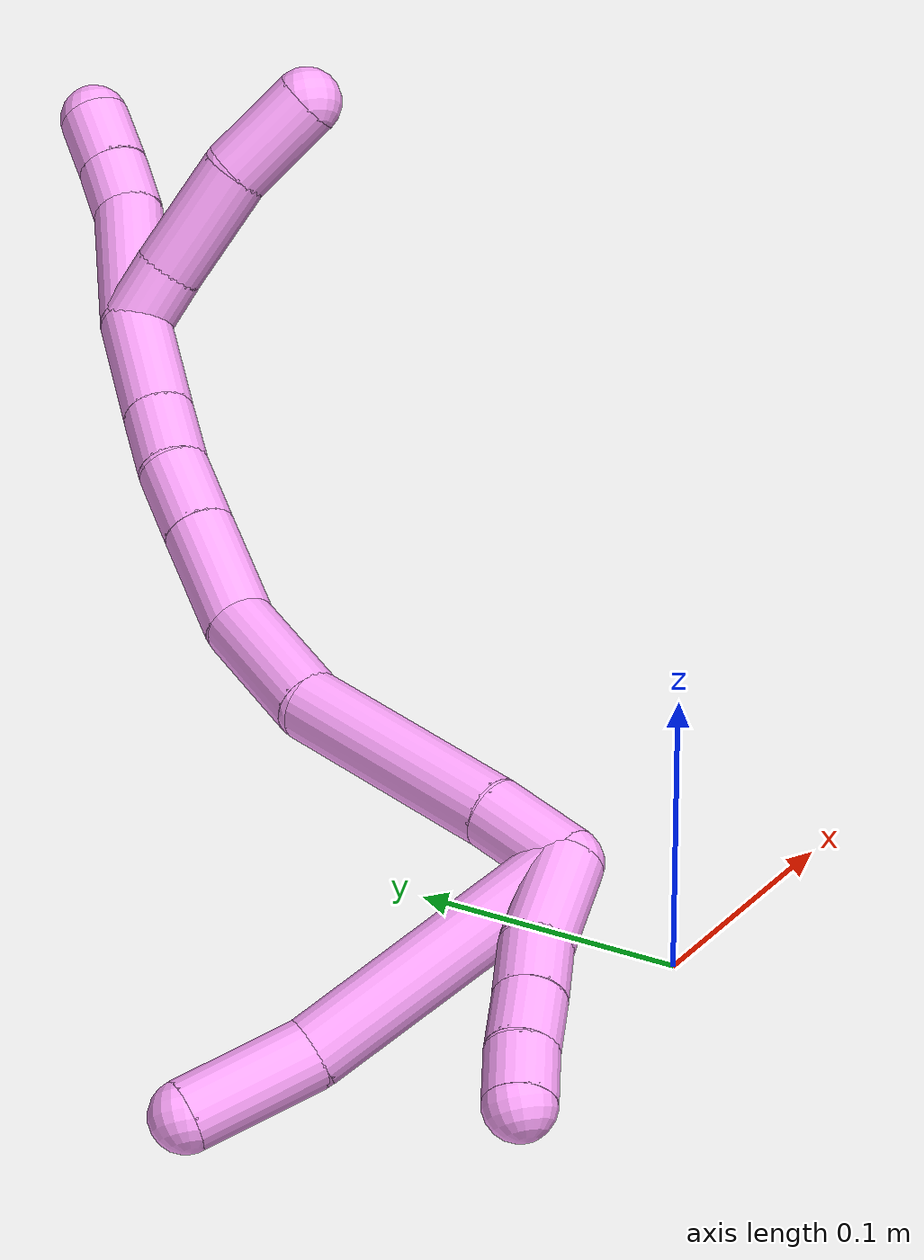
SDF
<sdf version="1.7">
 <world name="default">
  <model name="4">
   <static>0</static>
   <link name="4">
    <collision name="collision-cylinder-e_1_2_8">
     <pose>-0.025064 0.039115 -0.023148 -2.10516 -0.503951 0.848212</pose>
     <geometry><cylinder><radius>0.0125</radius><length>0.103808</length></cylinder></geometry>
     <surface>
      <friction><ode><mu>1.16</mu><mu2>1.16</mu2><slip1>0</slip1><slip2>0</slip2></ode></friction>
      <contact><ode><kp>1e+06</kp><kd>1</kd><max_vel>0</max_vel><min_depth>0.001</min_depth></ode></contact>
     </surface>
    </collision>
    <visual name="visual-cylinder-e_1_2_8">
     <pose>-0.025064 0.039115 -0.023148 -2.10516 -0.503951 0.848212</pose>
     <geometry><cylinder><radius>0.0125</radius><length>0.103808</length></cylinder></geometry>
     <material><ambient>1 0.65098 0.996078 1</ambient></material>
    </visual>
    <collision name="collision-cylinder-e_2_8_6">
     <pose>-0.065086 0.094283 -0.053506 -1.99293 -0.704517 1.03321</pose>
     <geometry><cylinder><radius>0.0125</radius><length>0.046192</length></cylinder></geometry>
     <surface>
      <friction><ode><mu>1.16</mu><mu2>1.16</mu2><slip1>0</slip1><slip2>0</slip2></ode></friction>
      <contact><ode><kp>1e+06</kp><kd>1</kd><max_vel>0</max_vel><min_depth>0.001</min_depth></ode></contact>
     </surface>
    </collision>
    <visual name="visual-cylinder-e_2_8_6">
     <pose>-0.065086 0.094283 -0.053506 -1.99293 -0.704517 1.03321</pose>
     <geometry><cylinder><radius>0.0125</radius><length>0.046192</length></cylinder></geometry>
     <material><ambient>1 0.65098 0.996078 1</ambient></material>
    </visual>
    <collision name="collision-cylinder-e_1_2_9">
     <pose>-0.010264 0.002342 -0.014507 -2.98155 -0.609718 2.64253</pose>
     <geometry><cylinder><radius>0.0125</radius><length>0.035849</length></cylinder></geometry>
     <surface>
      <friction><ode><mu>1.16</mu><mu2>1.16</mu2><slip1>0</slip1><slip2>0</slip2></ode></friction>
      <contact><ode><kp>1e+06</kp><kd>1</kd><max_vel>0</max_vel><min_depth>0.001</min_depth></ode></contact>
     </surface>
    </collision>
    <visual name="visual-cylinder-e_1_2_9">
     <pose>-0.010264 0.002342 -0.014507 -2.98155 -0.609718 2.64253</pose>
     <geometry><cylinder><radius>0.0125</radius><length>0.035849</length></cylinder></geometry>
     <material><ambient>1 0.65098 0.996078 1</ambient></material>
    </visual>
    <collision name="collision-cylinder-e_2_9_10">
     <pose>-0.026142 0.004082 -0.038555 3.07866 -0.530948 -2.91109</pose>
     <geometry><cylinder><radius>0.0125</radius><length>0.022172</length></cylinder></geometry>
     <surface>
      <friction><ode><mu>1.16</mu><mu2>1.16</mu2><slip1>0</slip1><slip2>0</slip2></ode></friction>
      <contact><ode><kp>1e+06</kp><kd>1</kd><max_vel>0</max_vel><min_depth>0.001</min_depth></ode></contact>
     </surface>
    </collision>
    <visual name="visual-cylinder-e_2_9_10">
     <pose>-0.026142 0.004082 -0.038555 3.07866 -0.530948 -2.91109</pose>
     <geometry><cylinder><radius>0.0125</radius><length>0.022172</length></cylinder></geometry>
     <material><ambient>1 0.65098 0.996078 1</ambient></material>
    </visual>
    <collision name="collision-cylinder-e_3_10_11">
     <pose>-0.037341 0.003226 -0.057348 3.11399 -0.542961 -3.0425</pose>
     <geometry><cylinder><radius>0.0125</radius><length>0.021623</length></cylinder></geometry>
     <surface>
      <friction><ode><mu>1.16</mu><mu2>1.16</mu2><slip1>0</slip1><slip2>0</slip2></ode></friction>
      <contact><ode><kp>1e+06</kp><kd>1</kd><max_vel>0</max_vel><min_depth>0.001</min_depth></ode></contact>
     </surface>
    </collision>
    <visual name="visual-cylinder-e_3_10_11">
     <pose>-0.037341 0.003226 -0.057348 3.11399 -0.542961 -3.0425</pose>
     <geometry><cylinder><radius>0.0125</radius><length>0.021623</length></cylinder></geometry>
     <material><ambient>1 0.65098 0.996078 1</ambient></material>
    </visual>
    <collision name="collision-cylinder-e_4_11_5">
     <pose>-0.047281 0.002399 -0.075784 3.07947 -0.442 -2.86675</pose>
     <geometry><cylinder><radius>0.0125</radius><length>0.020356</length></cylinder></geometry>
     <surface>
      <friction><ode><mu>1.16</mu><mu2>1.16</mu2><slip1>0</slip1><slip2>0</slip2></ode></friction>
      <contact><ode><kp>1e+06</kp><kd>1</kd><max_vel>0</max_vel><min_depth>0.001</min_depth></ode></contact>
     </surface>
    </collision>
    <visual name="visual-cylinder-e_4_11_5">
     <pose>-0.047281 0.002399 -0.075784 3.07947 -0.442 -2.86675</pose>
     <geometry><cylinder><radius>0.0125</radius><length>0.020356</length></cylinder></geometry>
     <material><ambient>1 0.65098 0.996078 1</ambient></material>
    </visual>
    <collision name="collision-cylinder-e_1_2_12">
     <pose>-0.001675 0.011181 0.011891 -0.754645 -0.102245 0.040551</pose>
     <geometry><cylinder><radius>0.0125</radius><length>0.032815</length></cylinder></geometry>
     <surface>
      <friction><ode><mu>1.16</mu><mu2>1.16</mu2><slip1>0</slip1><slip2>0</slip2></ode></friction>
      <contact><ode><kp>1e+06</kp><kd>1</kd><max_vel>0</max_vel><min_depth>0.001</min_depth></ode></contact>
     </surface>
    </collision>
    <visual name="visual-cylinder-e_1_2_12">
     <pose>-0.001675 0.011181 0.011891 -0.754645 -0.102245 0.040551</pose>
     <geometry><cylinder><radius>0.0125</radius><length>0.032815</length></cylinder></geometry>
     <material><ambient>1 0.65098 0.996078 1</ambient></material>
    </visual>
    <collision name="collision-cylinder-e_2_12_13">
     <pose>-0.005191 0.052971 0.052012 -0.825794 -0.044192 0.019362</pose>
     <geometry><cylinder><radius>0.0125</radius><length>0.083362</length></cylinder></geometry>
     <surface>
      <friction><ode><mu>1.16</mu><mu2>1.16</mu2><slip1>0</slip1><slip2>0</slip2></ode></friction>
      <contact><ode><kp>1e+06</kp><kd>1</kd><max_vel>0</max_vel><min_depth>0.001</min_depth></ode></contact>
     </surface>
    </collision>
    <visual name="visual-cylinder-e_2_12_13">
     <pose>-0.005191 0.052971 0.052012 -0.825794 -0.044192 0.019362</pose>
     <geometry><cylinder><radius>0.0125</radius><length>0.083362</length></cylinder></geometry>
     <material><ambient>1 0.65098 0.996078 1</ambient></material>
    </visual>
    <collision name="collision-cylinder-e_3_13_14">
     <pose>-0.003315 0.097358 0.099517 -0.620619 0.155612 -0.04999</pose>
     <geometry><cylinder><radius>0.0125</radius><length>0.047964</length></cylinder></geometry>
     <surface>
      <friction><ode><mu>1.16</mu><mu2>1.16</mu2><slip1>0</slip1><slip2>0</slip2></ode></friction>
      <contact><ode><kp>1e+06</kp><kd>1</kd><max_vel>0</max_vel><min_depth>0.001</min_depth></ode></contact>
     </surface>
    </collision>
    <visual name="visual-cylinder-e_3_13_14">
     <pose>-0.003315 0.097358 0.099517 -0.620619 0.155612 -0.04999</pose>
     <geometry><cylinder><radius>0.0125</radius><length>0.047964</length></cylinder></geometry>
     <material><ambient>1 0.65098 0.996078 1</ambient></material>
    </visual>
    <collision name="collision-cylinder-e_4_14_15">
     <pose>0.002165 0.117214 0.138184 -0.303715 0.086557 -0.013254</pose>
     <geometry><cylinder><radius>0.0125</radius><length>0.040799</length></cylinder></geometry>
     <surface>
      <friction><ode><mu>1.16</mu><mu2>1.16</mu2><slip1>0</slip1><slip2>0</slip2></ode></friction>
      <contact><ode><kp>1e+06</kp><kd>1</kd><max_vel>0</max_vel><min_depth>0.001</min_depth></ode></contact>
     </surface>
    </collision>
    <visual name="visual-cylinder-e_4_14_15">
     <pose>0.002165 0.117214 0.138184 -0.303715 0.086557 -0.013254</pose>
     <geometry><cylinder><radius>0.0125</radius><length>0.040799</length></cylinder></geometry>
     <material><ambient>1 0.65098 0.996078 1</ambient></material>
    </visual>
    <collision name="collision-cylinder-e_5_15_16">
     <pose>0.005347 0.127363 0.170572 -0.303561 0.103771 -0.015886</pose>
     <geometry><cylinder><radius>0.0125</radius><length>0.027383</length></cylinder></geometry>
     <surface>
      <friction><ode><mu>1.16</mu><mu2>1.16</mu2><slip1>0</slip1><slip2>0</slip2></ode></friction>
      <contact><ode><kp>1e+06</kp><kd>1</kd><max_vel>0</max_vel><min_depth>0.001</min_depth></ode></contact>
     </surface>
    </collision>
    <visual name="visual-cylinder-e_5_15_16">
     <pose>0.005347 0.127363 0.170572 -0.303561 0.103771 -0.015886</pose>
     <geometry><cylinder><radius>0.0125</radius><length>0.027383</length></cylinder></geometry>
     <material><ambient>1 0.65098 0.996078 1</ambient></material>
    </visual>
    <collision name="collision-cylinder-e_6_16_17">
     <pose>0.009696 0.134574 0.195214 -0.263356 0.238337 -0.031714</pose>
     <geometry><cylinder><radius>0.0125</radius><length>0.024826</length></cylinder></geometry>
     <surface>
      <friction><ode><mu>1.16</mu><mu2>1.16</mu2><slip1>0</slip1><slip2>0</slip2></ode></friction>
      <contact><ode><kp>1e+06</kp><kd>1</kd><max_vel>0</max_vel><min_depth>0.001</min_depth></ode></contact>
     </surface>
    </collision>
    <visual name="visual-cylinder-e_6_16_17">
     <pose>0.009696 0.134574 0.195214 -0.263356 0.238337 -0.031714</pose>
     <geometry><cylinder><radius>0.0125</radius><length>0.024826</length></cylinder></geometry>
     <material><ambient>1 0.65098 0.996078 1</ambient></material>
    </visual>
    <collision name="collision-cylinder-e_7_17_1">
     <pose>0.01789 0.142902 0.226971 -0.252501 0.248204 -0.031664</pose>
     <geometry><cylinder><radius>0.0125</radius><length>0.042851</length></cylinder></geometry>
     <surface>
      <friction><ode><mu>1.16</mu><mu2>1.16</mu2><slip1>0</slip1><slip2>0</slip2></ode></friction>
      <contact><ode><kp>1e+06</kp><kd>1</kd><max_vel>0</max_vel><min_depth>0.001</min_depth></ode></contact>
     </surface>
    </collision>
    <visual name="visual-cylinder-e_7_17_1">
     <pose>0.01789 0.142902 0.226971 -0.252501 0.248204 -0.031664</pose>
     <geometry><cylinder><radius>0.0125</radius><length>0.042851</length></cylinder></geometry>
     <material><ambient>1 0.65098 0.996078 1</ambient></material>
    </visual>
    <collision name="collision-cylinder-e_1_1_18">
     <pose>0.034572 0.153465 0.271932 -0.212996 0.422118 -0.0458</pose>
     <geometry><cylinder><radius>0.0125</radius><length>0.055744</length></cylinder></geometry>
     <surface>
      <friction><ode><mu>1.16</mu><mu2>1.16</mu2><slip1>0</slip1><slip2>0</slip2></ode></friction>
      <contact><ode><kp>1e+06</kp><kd>1</kd><max_vel>0</max_vel><min_depth>0.001</min_depth></ode></contact>
     </surface>
    </collision>
    <visual name="visual-cylinder-e_1_1_18">
     <pose>0.034572 0.153465 0.271932 -0.212996 0.422118 -0.0458</pose>
     <geometry><cylinder><radius>0.0125</radius><length>0.055744</length></cylinder></geometry>
     <material><ambient>1 0.65098 0.996078 1</ambient></material>
    </visual>
    <collision name="collision-cylinder-e_2_18_19">
     <pose>0.047197 0.161253 0.307062 -0.230538 0.113715 -0.01318</pose>
     <geometry><cylinder><radius>0.0125</radius><length>0.021256</length></cylinder></geometry>
     <surface>
      <friction><ode><mu>1.16</mu><mu2>1.16</mu2><slip1>0</slip1><slip2>0</slip2></ode></friction>
      <contact><ode><kp>1e+06</kp><kd>1</kd><max_vel>0</max_vel><min_depth>0.001</min_depth></ode></contact>
     </surface>
    </collision>
    <visual name="visual-cylinder-e_2_18_19">
     <pose>0.047197 0.161253 0.307062 -0.230538 0.113715 -0.01318</pose>
     <geometry><cylinder><radius>0.0125</radius><length>0.021256</length></cylinder></geometry>
     <material><ambient>1 0.65098 0.996078 1</ambient></material>
    </visual>
    <collision name="collision-cylinder-e_3_19_4">
     <pose>0.049581 0.166672 0.32838 -0.265959 0.102597 -0.013736</pose>
     <geometry><cylinder><radius>0.0125</radius><length>0.023001</length></cylinder></geometry>
     <surface>
      <friction><ode><mu>1.16</mu><mu2>1.16</mu2><slip1>0</slip1><slip2>0</slip2></ode></friction>
      <contact><ode><kp>1e+06</kp><kd>1</kd><max_vel>0</max_vel><min_depth>0.001</min_depth></ode></contact>
     </surface>
    </collision>
    <visual name="visual-cylinder-e_3_19_4">
     <pose>0.049581 0.166672 0.32838 -0.265959 0.102597 -0.013736</pose>
     <geometry><cylinder><radius>0.0125</radius><length>0.023001</length></cylinder></geometry>
     <material><ambient>1 0.65098 0.996078 1</ambient></material>
    </visual>
    <collision name="collision-cylinder-e_1_1_20">
     <pose>0.023987 0.139515 0.254301 0.870999 0.074219 0.034546</pose>
     <geometry><cylinder><radius>0.0125</radius><length>0.022482</length></cylinder></geometry>
     <surface>
      <friction><ode><mu>1.16</mu><mu2>1.16</mu2><slip1>0</slip1><slip2>0</slip2></ode></friction>
      <contact><ode><kp>1e+06</kp><kd>1</kd><max_vel>0</max_vel><min_depth>0.001</min_depth></ode></contact>
     </surface>
    </collision>
    <visual name="visual-cylinder-e_1_1_20">
     <pose>0.023987 0.139515 0.254301 0.870999 0.074219 0.034546</pose>
     <geometry><cylinder><radius>0.0125</radius><length>0.022482</length></cylinder></geometry>
     <material><ambient>1 0.65098 0.996078 1</ambient></material>
    </visual>
    <collision name="collision-cylinder-e_2_20_21">
     <pose>0.025319 0.113663 0.273707 0.956491 0.023562 0.012214</pose>
     <geometry><cylinder><radius>0.0125</radius><length>0.042296</length></cylinder></geometry>
     <surface>
      <friction><ode><mu>1.16</mu><mu2>1.16</mu2><slip1>0</slip1><slip2>0</slip2></ode></friction>
      <contact><ode><kp>1e+06</kp><kd>1</kd><max_vel>0</max_vel><min_depth>0.001</min_depth></ode></contact>
     </surface>
    </collision>
    <visual name="visual-cylinder-e_2_20_21">
     <pose>0.025319 0.113663 0.273707 0.956491 0.023562 0.012214</pose>
     <geometry><cylinder><radius>0.0125</radius><length>0.042296</length></cylinder></geometry>
     <material><ambient>1 0.65098 0.996078 1</ambient></material>
    </visual>
    <collision name="collision-cylinder-e_3_21_3">
     <pose>0.029214 0.081261 0.29425 1.06603 0.194131 0.114767</pose>
     <geometry><cylinder><radius>0.0125</radius><length>0.035222</length></cylinder></geometry>
     <surface>
      <friction><ode><mu>1.16</mu><mu2>1.16</mu2><slip1>0</slip1><slip2>0</slip2></ode></friction>
      <contact><ode><kp>1e+06</kp><kd>1</kd><max_vel>0</max_vel><min_depth>0.001</min_depth></ode></contact>
     </surface>
    </collision>
    <visual name="visual-cylinder-e_3_21_3">
     <pose>0.029214 0.081261 0.29425 1.06603 0.194131 0.114767</pose>
     <geometry><cylinder><radius>0.0125</radius><length>0.035222</length></cylinder></geometry>
     <material><ambient>1 0.65098 0.996078 1</ambient></material>
    </visual>
    <collision name="collision-sphere-3">
     <pose>0.032612 0.066136 0.302607 0 -0 0</pose>
     <geometry><sphere><radius>0.0125</radius></sphere></geometry>
     <surface>
      <friction><ode><mu>1.16</mu><mu2>1.16</mu2><slip1>0</slip1><slip2>0</slip2></ode></friction>
      <contact><ode><kp>1e+06</kp><kd>1</kd><max_vel>0</max_vel><min_depth>0.001</min_depth></ode></contact>
     </surface>
    </collision>
    <visual name="visual-sphere-3">
     <pose>0.032612 0.066136 0.302607 0 -0 0</pose>
     <geometry><sphere><radius>0.0125</radius></sphere></geometry>
     <material><ambient>1 0.65098 0.996078 1</ambient></material>
    </visual>
    <collision name="collision-sphere-21">
     <pose>0.025817 0.096386 0.285893 0 -0 0</pose>
     <geometry><sphere><radius>0.0125</radius></sphere></geometry>
     <surface>
      <friction><ode><mu>1.16</mu><mu2>1.16</mu2><slip1>0</slip1><slip2>0</slip2></ode></friction>
      <contact><ode><kp>1e+06</kp><kd>1</kd><max_vel>0</max_vel><min_depth>0.001</min_depth></ode></contact>
     </surface>
    </collision>
    <visual name="visual-sphere-21">
     <pose>0.025817 0.096386 0.285893 0 -0 0</pose>
     <geometry><sphere><radius>0.0125</radius></sphere></geometry>
     <material><ambient>1 0.65098 0.996078 1</ambient></material>
    </visual>
    <collision name="collision-sphere-20">
     <pose>0.02482 0.13094 0.261521 0 -0 0</pose>
     <geometry><sphere><radius>0.0125</radius></sphere></geometry>
     <surface>
      <friction><ode><mu>1.16</mu><mu2>1.16</mu2><slip1>0</slip1><slip2>0</slip2></ode></friction>
      <contact><ode><kp>1e+06</kp><kd>1</kd><max_vel>0</max_vel><min_depth>0.001</min_depth></ode></contact>
     </surface>
    </collision>
    <visual name="visual-sphere-20">
     <pose>0.02482 0.13094 0.261521 0 -0 0</pose>
     <geometry><sphere><radius>0.0125</radius></sphere></geometry>
     <material><ambient>1 0.65098 0.996078 1</ambient></material>
    </visual>
    <collision name="collision-sphere-4">
     <pose>0.050759 0.169679 0.339418 0 -0 0</pose>
     <geometry><sphere><radius>0.0125</radius></sphere></geometry>
     <surface>
      <friction><ode><mu>1.16</mu><mu2>1.16</mu2><slip1>0</slip1><slip2>0</slip2></ode></friction>
      <contact><ode><kp>1e+06</kp><kd>1</kd><max_vel>0</max_vel><min_depth>0.001</min_depth></ode></contact>
     </surface>
    </collision>
    <visual name="visual-sphere-4">
     <pose>0.050759 0.169679 0.339418 0 -0 0</pose>
     <geometry><sphere><radius>0.0125</radius></sphere></geometry>
     <material><ambient>1 0.65098 0.996078 1</ambient></material>
    </visual>
    <collision name="collision-sphere-11">
     <pose>-0.042927 0.00297 -0.066601 0 -0 0</pose>
     <geometry><sphere><radius>0.0125</radius></sphere></geometry>
     <surface>
      <friction><ode><mu>1.16</mu><mu2>1.16</mu2><slip1>0</slip1><slip2>0</slip2></ode></friction>
      <contact><ode><kp>1e+06</kp><kd>1</kd><max_vel>0</max_vel><min_depth>0.001</min_depth></ode></contact>
     </surface>
    </collision>
    <visual name="visual-sphere-11">
     <pose>-0.042927 0.00297 -0.066601 0 -0 0</pose>
     <geometry><sphere><radius>0.0125</radius></sphere></geometry>
     <material><ambient>1 0.65098 0.996078 1</ambient></material>
    </visual>
    <collision name="collision-sphere-10">
     <pose>-0.031755 0.003481 -0.048095 0 -0 0</pose>
     <geometry><sphere><radius>0.0125</radius></sphere></geometry>
     <surface>
      <friction><ode><mu>1.16</mu><mu2>1.16</mu2><slip1>0</slip1><slip2>0</slip2></ode></friction>
      <contact><ode><kp>1e+06</kp><kd>1</kd><max_vel>0</max_vel><min_depth>0.001</min_depth></ode></contact>
     </surface>
    </collision>
    <visual name="visual-sphere-10">
     <pose>-0.031755 0.003481 -0.048095 0 -0 0</pose>
     <geometry><sphere><radius>0.0125</radius></sphere></geometry>
     <material><ambient>1 0.65098 0.996078 1</ambient></material>
    </visual>
    <collision name="collision-sphere-6">
     <pose>-0.080045 0.110336 -0.060716 0 -0 0</pose>
     <geometry><sphere><radius>0.0125</radius></sphere></geometry>
     <surface>
      <friction><ode><mu>1.16</mu><mu2>1.16</mu2><slip1>0</slip1><slip2>0</slip2></ode></friction>
      <contact><ode><kp>1e+06</kp><kd>1</kd><max_vel>0</max_vel><min_depth>0.001</min_depth></ode></contact>
     </surface>
    </collision>
    <visual name="visual-sphere-6">
     <pose>-0.080045 0.110336 -0.060716 0 -0 0</pose>
     <geometry><sphere><radius>0.0125</radius></sphere></geometry>
     <material><ambient>1 0.65098 0.996078 1</ambient></material>
    </visual>
    <collision name="collision-sphere-9">
     <pose>-0.020529 0.004683 -0.029014 0 -0 0</pose>
     <geometry><sphere><radius>0.0125</radius></sphere></geometry>
     <surface>
      <friction><ode><mu>1.16</mu><mu2>1.16</mu2><slip1>0</slip1><slip2>0</slip2></ode></friction>
      <contact><ode><kp>1e+06</kp><kd>1</kd><max_vel>0</max_vel><min_depth>0.001</min_depth></ode></contact>
     </surface>
    </collision>
    <visual name="visual-sphere-9">
     <pose>-0.020529 0.004683 -0.029014 0 -0 0</pose>
     <geometry><sphere><radius>0.0125</radius></sphere></geometry>
     <material><ambient>1 0.65098 0.996078 1</ambient></material>
    </visual>
    <collision name="collision-sphere-2">
     <geometry><sphere><radius>0.0125</radius></sphere></geometry>
     <surface>
      <friction><ode><mu>1.16</mu><mu2>1.16</mu2><slip1>0</slip1><slip2>0</slip2></ode></friction>
      <contact><ode><kp>1e+06</kp><kd>1</kd><max_vel>0</max_vel><min_depth>0.001</min_depth></ode></contact>
     </surface>
    </collision>
    <visual name="visual-sphere-2">
     <geometry><sphere><radius>0.0125</radius></sphere></geometry>
     <material><ambient>1 0.65098 0.996078 1</ambient></material>
    </visual>
    <collision name="collision-sphere-19">
     <pose>0.048403 0.163666 0.317342 0 -0 0</pose>
     <geometry><sphere><radius>0.0125</radius></sphere></geometry>
     <surface>
      <friction><ode><mu>1.16</mu><mu2>1.16</mu2><slip1>0</slip1><slip2>0</slip2></ode></friction>
      <contact><ode><kp>1e+06</kp><kd>1</kd><max_vel>0</max_vel><min_depth>0.001</min_depth></ode></contact>
     </surface>
    </collision>
    <visual name="visual-sphere-19">
     <pose>0.048403 0.163666 0.317342 0 -0 0</pose>
     <geometry><sphere><radius>0.0125</radius></sphere></geometry>
     <material><ambient>1 0.65098 0.996078 1</ambient></material>
    </visual>
    <collision name="collision-sphere-8">
     <pose>-0.050128 0.07823 -0.046296 0 -0 0</pose>
     <geometry><sphere><radius>0.0125</radius></sphere></geometry>
     <surface>
      <friction><ode><mu>1.16</mu><mu2>1.16</mu2><slip1>0</slip1><slip2>0</slip2></ode></friction>
      <contact><ode><kp>1e+06</kp><kd>1</kd><max_vel>0</max_vel><min_depth>0.001</min_depth></ode></contact>
     </surface>
    </collision>
    <visual name="visual-sphere-8">
     <pose>-0.050128 0.07823 -0.046296 0 -0 0</pose>
     <geometry><sphere><radius>0.0125</radius></sphere></geometry>
     <material><ambient>1 0.65098 0.996078 1</ambient></material>
    </visual>
    <collision name="collision-sphere-5">
     <pose>-0.051635 0.001828 -0.084966 0 -0 0</pose>
     <geometry><sphere><radius>0.0125</radius></sphere></geometry>
     <surface>
      <friction><ode><mu>1.16</mu><mu2>1.16</mu2><slip1>0</slip1><slip2>0</slip2></ode></friction>
      <contact><ode><kp>1e+06</kp><kd>1</kd><max_vel>0</max_vel><min_depth>0.001</min_depth></ode></contact>
     </surface>
    </collision>
    <visual name="visual-sphere-5">
     <pose>-0.051635 0.001828 -0.084966 0 -0 0</pose>
     <geometry><sphere><radius>0.0125</radius></sphere></geometry>
     <material><ambient>1 0.65098 0.996078 1</ambient></material>
    </visual>
    <collision name="collision-sphere-12">
     <pose>-0.003349 0.022362 0.023781 0 -0 0</pose>
     <geometry><sphere><radius>0.0125</radius></sphere></geometry>
     <surface>
      <friction><ode><mu>1.16</mu><mu2>1.16</mu2><slip1>0</slip1><slip2>0</slip2></ode></friction>
      <contact><ode><kp>1e+06</kp><kd>1</kd><max_vel>0</max_vel><min_depth>0.001</min_depth></ode></contact>
     </surface>
    </collision>
    <visual name="visual-sphere-12">
     <pose>-0.003349 0.022362 0.023781 0 -0 0</pose>
     <geometry><sphere><radius>0.0125</radius></sphere></geometry>
     <material><ambient>1 0.65098 0.996078 1</ambient></material>
    </visual>
    <collision name="collision-sphere-13">
     <pose>-0.007032 0.08358 0.080243 0 -0 0</pose>
     <geometry><sphere><radius>0.0125</radius></sphere></geometry>
     <surface>
      <friction><ode><mu>1.16</mu><mu2>1.16</mu2><slip1>0</slip1><slip2>0</slip2></ode></friction>
      <contact><ode><kp>1e+06</kp><kd>1</kd><max_vel>0</max_vel><min_depth>0.001</min_depth></ode></contact>
     </surface>
    </collision>
    <visual name="visual-sphere-13">
     <pose>-0.007032 0.08358 0.080243 0 -0 0</pose>
     <geometry><sphere><radius>0.0125</radius></sphere></geometry>
     <material><ambient>1 0.65098 0.996078 1</ambient></material>
    </visual>
    <collision name="collision-sphere-14">
     <pose>0.000402 0.111136 0.118791 0 -0 0</pose>
     <geometry><sphere><radius>0.0125</radius></sphere></geometry>
     <surface>
      <friction><ode><mu>1.16</mu><mu2>1.16</mu2><slip1>0</slip1><slip2>0</slip2></ode></friction>
      <contact><ode><kp>1e+06</kp><kd>1</kd><max_vel>0</max_vel><min_depth>0.001</min_depth></ode></contact>
     </surface>
    </collision>
    <visual name="visual-sphere-14">
     <pose>0.000402 0.111136 0.118791 0 -0 0</pose>
     <geometry><sphere><radius>0.0125</radius></sphere></geometry>
     <material><ambient>1 0.65098 0.996078 1</ambient></material>
    </visual>
    <collision name="collision-sphere-15">
     <pose>0.003929 0.123292 0.157577 0 -0 0</pose>
     <geometry><sphere><radius>0.0125</radius></sphere></geometry>
     <surface>
      <friction><ode><mu>1.16</mu><mu2>1.16</mu2><slip1>0</slip1><slip2>0</slip2></ode></friction>
      <contact><ode><kp>1e+06</kp><kd>1</kd><max_vel>0</max_vel><min_depth>0.001</min_depth></ode></contact>
     </surface>
    </collision>
    <visual name="visual-sphere-15">
     <pose>0.003929 0.123292 0.157577 0 -0 0</pose>
     <geometry><sphere><radius>0.0125</radius></sphere></geometry>
     <material><ambient>1 0.65098 0.996078 1</ambient></material>
    </visual>
    <collision name="collision-sphere-16">
     <pose>0.006765 0.131433 0.183568 0 -0 0</pose>
     <geometry><sphere><radius>0.0125</radius></sphere></geometry>
     <surface>
      <friction><ode><mu>1.16</mu><mu2>1.16</mu2><slip1>0</slip1><slip2>0</slip2></ode></friction>
      <contact><ode><kp>1e+06</kp><kd>1</kd><max_vel>0</max_vel><min_depth>0.001</min_depth></ode></contact>
     </surface>
    </collision>
    <visual name="visual-sphere-16">
     <pose>0.006765 0.131433 0.183568 0 -0 0</pose>
     <geometry><sphere><radius>0.0125</radius></sphere></geometry>
     <material><ambient>1 0.65098 0.996078 1</ambient></material>
    </visual>
    <collision name="collision-sphere-17">
     <pose>0.012626 0.137714 0.206861 0 -0 0</pose>
     <geometry><sphere><radius>0.0125</radius></sphere></geometry>
     <surface>
      <friction><ode><mu>1.16</mu><mu2>1.16</mu2><slip1>0</slip1><slip2>0</slip2></ode></friction>
      <contact><ode><kp>1e+06</kp><kd>1</kd><max_vel>0</max_vel><min_depth>0.001</min_depth></ode></contact>
     </surface>
    </collision>
    <visual name="visual-sphere-17">
     <pose>0.012626 0.137714 0.206861 0 -0 0</pose>
     <geometry><sphere><radius>0.0125</radius></sphere></geometry>
     <material><ambient>1 0.65098 0.996078 1</ambient></material>
    </visual>
    <collision name="collision-sphere-1">
     <pose>0.023153 0.148091 0.247081 0 -0 0</pose>
     <geometry><sphere><radius>0.0125</radius></sphere></geometry>
     <surface>
      <friction><ode><mu>1.16</mu><mu2>1.16</mu2><slip1>0</slip1><slip2>0</slip2></ode></friction>
      <contact><ode><kp>1e+06</kp><kd>1</kd><max_vel>0</max_vel><min_depth>0.001</min_depth></ode></contact>
     </surface>
    </collision>
    <visual name="visual-sphere-1">
     <pose>0.023153 0.148091 0.247081 0 -0 0</pose>
     <geometry><sphere><radius>0.0125</radius></sphere></geometry>
     <material><ambient>1 0.65098 0.996078 1</ambient></material>
    </visual>
    <collision name="collision-sphere-18">
     <pose>0.045991 0.15884 0.296783 0 -0 0</pose>
     <geometry><sphere><radius>0.0125</radius></sphere></geometry>
     <surface>
      <friction><ode><mu>1.16</mu><mu2>1.16</mu2><slip1>0</slip1><slip2>0</slip2></ode></friction>
      <contact><ode><kp>1e+06</kp><kd>1</kd><max_vel>0</max_vel><min_depth>0.001</min_depth></ode></contact>
     </surface>
    </collision>
    <visual name="visual-sphere-18">
     <pose>0.045991 0.15884 0.296783 0 -0 0</pose>
     <geometry><sphere><radius>0.0125</radius></sphere></geometry>
     <material><ambient>1 0.65098 0.996078 1</ambient></material>
    </visual>
    <inertial>
     <pose>-0.001361 0.083356 0.109659 0 -0 0</pose>
     <mass>0.75</mass>
     <inertia>
      <ixx>0.000239</ixx>
      <ixy>0</ixy>
      <ixz>0</ixz>
      <iyy>0.000192</iyy>
      <iyz>0</iyz>
      <izz>-5.8e-05</izz>
     </inertia>
    </inertial>
   </link>
   <pose>-0.081329 -0.003911 0.076727 -0.598855 0.478192 -0.169126</pose>
  </model>
 </world>
</sdf>
